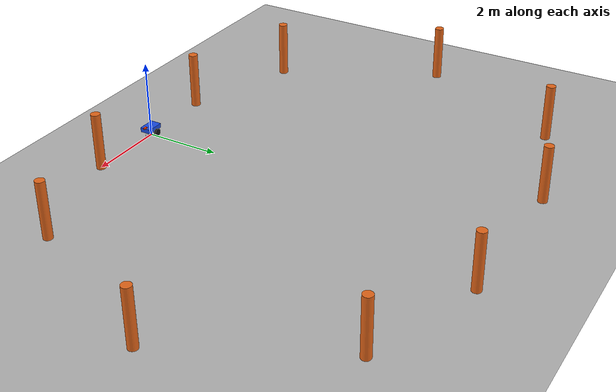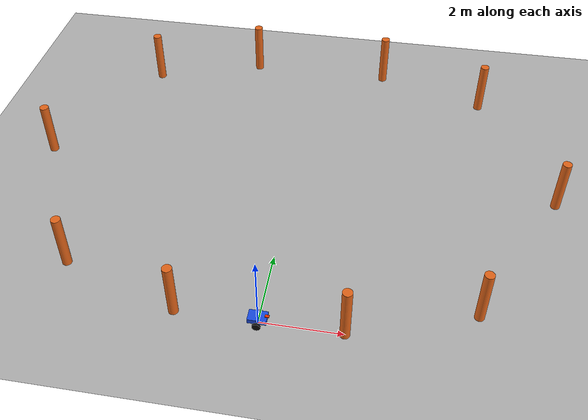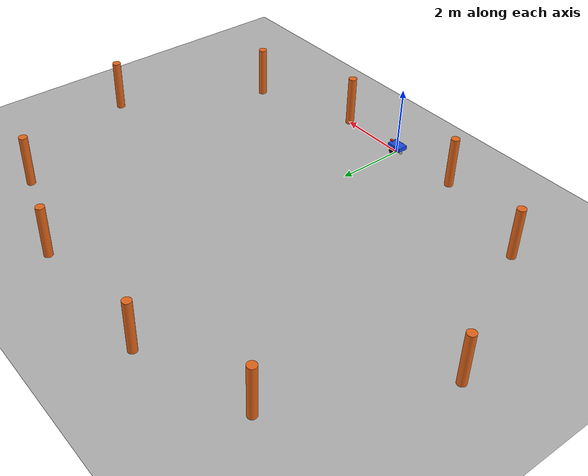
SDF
<?xml version="1.0"?>
<sdf version="1.6"><world name="slam_lab">
<gravity>0 0 -9.81</gravity>
<physics type="ode"><max_step_size>0.001</max_step_size><real_time_update_rate>1000</real_time_update_rate></physics>
<scene><ambient>0.6 0.6 0.6 1</ambient><background>0.85 0.9 0.95 1</background></scene>
<light name="sun" type="directional"><pose>0 0 10 0 0 0</pose><diffuse>0.8 0.8 0.8 1</diffuse><direction>-0.5 0.1 -1</direction><cast_shadows>true</cast_shadows></light>
<plugin name="world_state" filename="libgazebo_ros_state.so"><ros><namespace>/slam_demo</namespace></ros><update_rate>20</update_rate></plugin>
<model name="floor"><static>true</static><link name="floor_link"><collision name="c"><geometry><plane><normal>0 0 1</normal><size>40 40</size></plane></geometry></collision><visual name="v"><geometry><plane><normal>0 0 1</normal><size>40 40</size></plane></geometry><material><ambient>0.7 0.7 0.7 1</ambient><diffuse>0.7 0.7 0.7 1</diffuse></material></visual></link></model>
<model name="slam_robot"><pose>0 0 0.11 0 0 0</pose>
<link name="base_link"><inertial><mass>3</mass><inertia><ixx>0.06</ixx><iyy>0.08</iyy><izz>0.1</izz></inertia></inertial><collision name="body_collision"><pose>0 0 0.09 0 0 0</pose><geometry><box><size>0.45 0.30 0.12</size></box></geometry></collision><visual name="body_visual"><pose>0 0 0.09 0 0 0</pose><geometry><box><size>0.45 0.30 0.12</size></box></geometry><material><ambient>0.1 0.3 0.9 1</ambient><diffuse>0.1 0.3 0.9 1</diffuse></material></visual>
<visual name="heading"><pose>0.22 0 0.17 0 0 0</pose><geometry><box><size>0.10 0.06 0.03</size></box></geometry><material><ambient>1 0.2 0 1</ambient><diffuse>1 0.2 0 1</diffuse></material></visual></link>
<link name="left_wheel"><pose>0 0.2 0 1.57079632679 0 0</pose><inertial><mass>0.3</mass><inertia><ixx>0.001</ixx><iyy>0.001</iyy><izz>0.001</izz></inertia></inertial><collision name="c"><geometry><cylinder><radius>0.1</radius><length>0.05</length></cylinder></geometry><surface><friction><ode><mu>1</mu><mu2>1</mu2></ode></friction></surface></collision><visual name="v"><geometry><cylinder><radius>0.1</radius><length>0.05</length></cylinder></geometry><material><ambient>0.05 0.05 0.05 1</ambient><diffuse>0.05 0.05 0.05 1</diffuse></material></visual></link>
<joint name="left_joint" type="revolute"><parent>base_link</parent><child>left_wheel</child><axis><xyz>0 1 0</xyz><use_parent_model_frame>true</use_parent_model_frame><limit><lower>-1e16</lower><upper>1e16</upper></limit><dynamics><damping>0.001</damping></dynamics></axis></joint><link name="right_wheel"><pose>0 -0.2 0 1.57079632679 0 0</pose><inertial><mass>0.3</mass><inertia><ixx>0.001</ixx><iyy>0.001</iyy><izz>0.001</izz></inertia></inertial><collision name="c"><geometry><cylinder><radius>0.1</radius><length>0.05</length></cylinder></geometry><surface><friction><ode><mu>1</mu><mu2>1</mu2></ode></friction></surface></collision><visual name="v"><geometry><cylinder><radius>0.1</radius><length>0.05</length></cylinder></geometry><material><ambient>0.05 0.05 0.05 1</ambient><diffuse>0.05 0.05 0.05 1</diffuse></material></visual></link>
<joint name="right_joint" type="revolute"><parent>base_link</parent><child>right_wheel</child><axis><xyz>0 1 0</xyz><use_parent_model_frame>true</use_parent_model_frame><limit><lower>-1e16</lower><upper>1e16</upper></limit><dynamics><damping>0.001</damping></dynamics></axis></joint><link name="front_caster"><pose>0.17 0 -0.06 0 0 0</pose><inertial><mass>0.05</mass><inertia><ixx>0.0001</ixx><iyy>0.0001</iyy><izz>0.0001</izz></inertia></inertial><collision name="c"><geometry><sphere><radius>0.04</radius></sphere></geometry><surface><friction><ode><mu>0</mu><mu2>0</mu2></ode></friction></surface></collision><visual name="v"><geometry><sphere><radius>0.04</radius></sphere></geometry></visual></link><joint name="front_fixed" type="fixed"><parent>base_link</parent><child>front_caster</child></joint><link name="back_caster"><pose>-0.17 0 -0.06 0 0 0</pose><inertial><mass>0.05</mass><inertia><ixx>0.0001</ixx><iyy>0.0001</iyy><izz>0.0001</izz></inertia></inertial><collision name="c"><geometry><sphere><radius>0.04</radius></sphere></geometry><surface><friction><ode><mu>0</mu><mu2>0</mu2></ode></friction></surface></collision><visual name="v"><geometry><sphere><radius>0.04</radius></sphere></geometry></visual></link><joint name="back_fixed" type="fixed"><parent>base_link</parent><child>back_caster</child></joint><plugin name="drive" filename="libgazebo_ros_diff_drive.so"><ros><namespace>/slam_demo</namespace><remapping>cmd_vel:=cmd_vel</remapping><remapping>odom:=wheel_odom</remapping></ros><update_rate>10</update_rate><left_joint>left_joint</left_joint><right_joint>right_joint</right_joint><wheel_separation>0.4</wheel_separation><wheel_diameter>0.2</wheel_diameter><max_wheel_torque>20</max_wheel_torque><max_wheel_acceleration>2</max_wheel_acceleration><odometry_source>0</odometry_source><publish_odom>true</publish_odom><publish_odom_tf>false</publish_odom_tf><publish_wheel_tf>false</publish_wheel_tf><odometry_frame>map</odometry_frame><robot_base_frame>base_link</robot_base_frame></plugin></model><model name="landmark_0"><static>true</static><pose>-2.0 0.0 0.75 0 0 0</pose><link name="post"><collision name="c"><geometry><cylinder><radius>0.12</radius><length>1.5</length></cylinder></geometry></collision><visual name="v"><geometry><cylinder><radius>0.12</radius><length>1.5</length></cylinder></geometry><material><ambient>0.9 0.4 0.1 1</ambient><diffuse>0.9 0.4 0.1 1</diffuse></material></visual></link></model><model name="landmark_1"><static>true</static><pose>2.0 0.0 0.75 0 0 0</pose><link name="post"><collision name="c"><geometry><cylinder><radius>0.12</radius><length>1.5</length></cylinder></geometry></collision><visual name="v"><geometry><cylinder><radius>0.12</radius><length>1.5</length></cylinder></geometry><material><ambient>0.9 0.4 0.1 1</ambient><diffuse>0.9 0.4 0.1 1</diffuse></material></visual></link></model><model name="landmark_2"><static>true</static><pose>5.0 1.0 0.75 0 0 0</pose><link name="post"><collision name="c"><geometry><cylinder><radius>0.12</radius><length>1.5</length></cylinder></geometry></collision><visual name="v"><geometry><cylinder><radius>0.12</radius><length>1.5</length></cylinder></geometry><material><ambient>0.9 0.4 0.1 1</ambient><diffuse>0.9 0.4 0.1 1</diffuse></material></visual></link></model><model name="landmark_3"><static>true</static><pose>7.0 5.0 0.75 0 0 0</pose><link name="post"><collision name="c"><geometry><cylinder><radius>0.12</radius><length>1.5</length></cylinder></geometry></collision><visual name="v"><geometry><cylinder><radius>0.12</radius><length>1.5</length></cylinder></geometry><material><ambient>0.9 0.4 0.1 1</ambient><diffuse>0.9 0.4 0.1 1</diffuse></material></visual></link></model><model name="landmark_4"><static>true</static><pose>5.0 9.0 0.75 0 0 0</pose><link name="post"><collision name="c"><geometry><cylinder><radius>0.12</radius><length>1.5</length></cylinder></geometry></collision><visual name="v"><geometry><cylinder><radius>0.12</radius><length>1.5</length></cylinder></geometry><material><ambient>0.9 0.4 0.1 1</ambient><diffuse>0.9 0.4 0.1 1</diffuse></material></visual></link></model><model name="landmark_5"><static>true</static><pose>2.0 10.0 0.75 0 0 0</pose><link name="post"><collision name="c"><geometry><cylinder><radius>0.12</radius><length>1.5</length></cylinder></geometry></collision><visual name="v"><geometry><cylinder><radius>0.12</radius><length>1.5</length></cylinder></geometry><material><ambient>0.9 0.4 0.1 1</ambient><diffuse>0.9 0.4 0.1 1</diffuse></material></visual></link></model><model name="landmark_6"><static>true</static><pose>-2.0 10.0 0.75 0 0 0</pose><link name="post"><collision name="c"><geometry><cylinder><radius>0.12</radius><length>1.5</length></cylinder></geometry></collision><visual name="v"><geometry><cylinder><radius>0.12</radius><length>1.5</length></cylinder></geometry><material><ambient>0.9 0.4 0.1 1</ambient><diffuse>0.9 0.4 0.1 1</diffuse></material></visual></link></model><model name="landmark_7"><static>true</static><pose>-5.0 9.0 0.75 0 0 0</pose><link name="post"><collision name="c"><geometry><cylinder><radius>0.12</radius><length>1.5</length></cylinder></geometry></collision><visual name="v"><geometry><cylinder><radius>0.12</radius><length>1.5</length></cylinder></geometry><material><ambient>0.9 0.4 0.1 1</ambient><diffuse>0.9 0.4 0.1 1</diffuse></material></visual></link></model><model name="landmark_8"><static>true</static><pose>-7.0 5.0 0.75 0 0 0</pose><link name="post"><collision name="c"><geometry><cylinder><radius>0.12</radius><length>1.5</length></cylinder></geometry></collision><visual name="v"><geometry><cylinder><radius>0.12</radius><length>1.5</length></cylinder></geometry><material><ambient>0.9 0.4 0.1 1</ambient><diffuse>0.9 0.4 0.1 1</diffuse></material></visual></link></model><model name="landmark_9"><static>true</static><pose>-5.0 1.0 0.75 0 0 0</pose><link name="post"><collision name="c"><geometry><cylinder><radius>0.12</radius><length>1.5</length></cylinder></geometry></collision><visual name="v"><geometry><cylinder><radius>0.12</radius><length>1.5</length></cylinder></geometry><material><ambient>0.9 0.4 0.1 1</ambient><diffuse>0.9 0.4 0.1 1</diffuse></material></visual></link></model><gui><camera name="overview"><pose>15 -12 18 0 0.8 2.15</pose></camera></gui></world></sdf>
